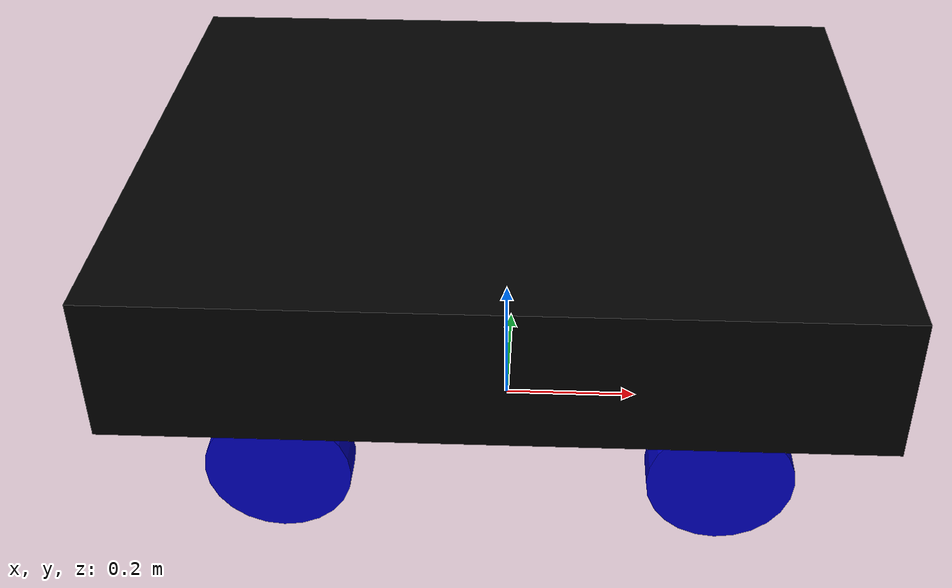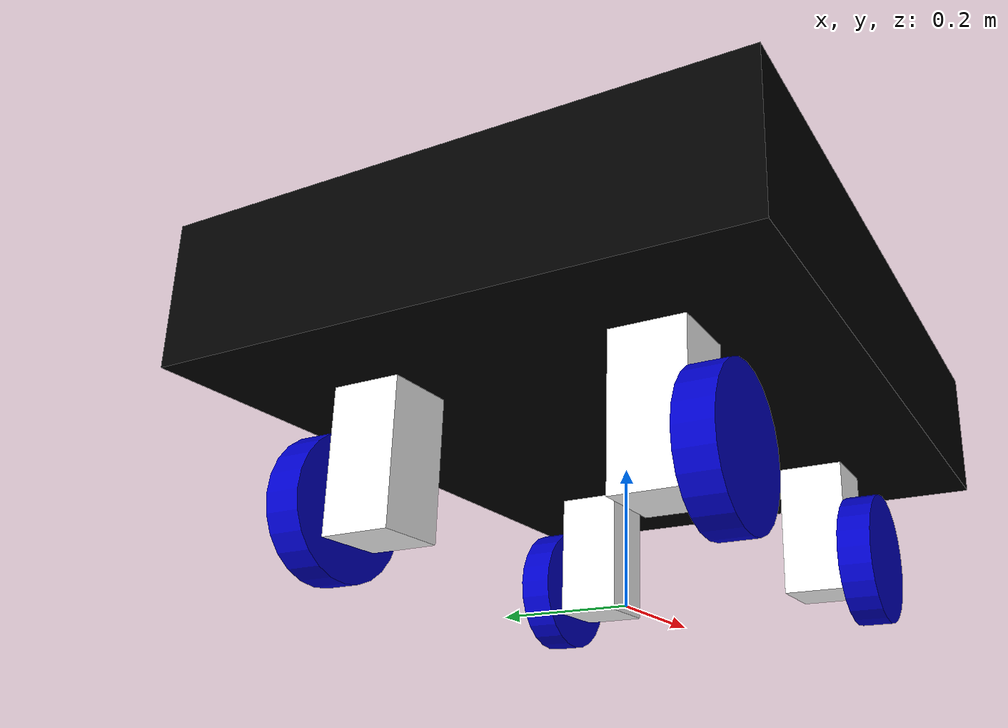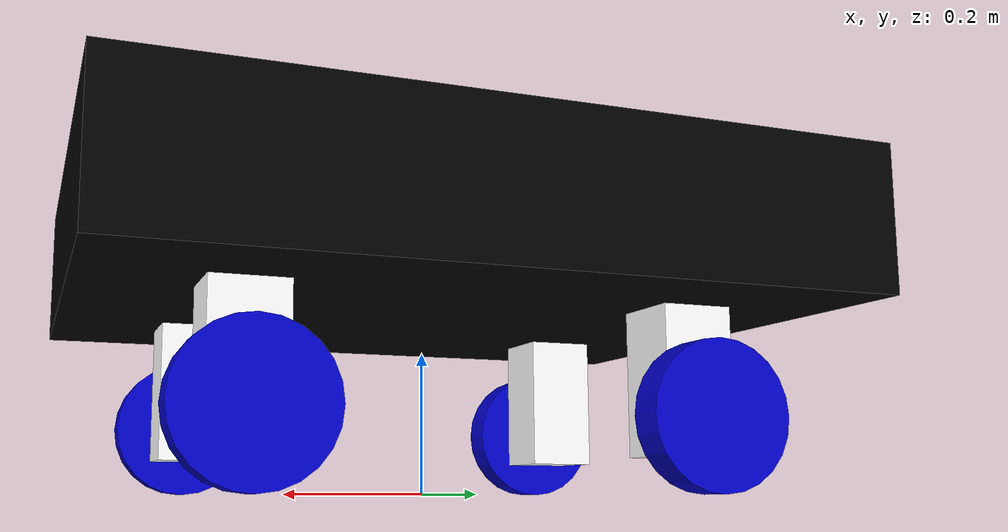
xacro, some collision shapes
<?xml version="1.0"?>
<robot xmlns:xacro="http://www.ros.org/wiki/xacro" name="test_car">
    <!-- Global properties-->
    <xacro:property name="suspension_width_x" value="0.1"/>
    <xacro:property name="suspension_width_y" value="0.1"/>
    <!-- wheel generation for wheel link, suspspension link and joint -->
    <!-- reflect1 for left or right(y)-->
    <xacro:macro name="wheel_gen" params="suffix radius width reflect1">
        <link name="wheel_${suffix}_suspension">
            <visual>
                <geometry>
                    <box size="${suspension_width_x} ${suspension_width_y} ${2*radius}"/>
                </geometry>
                <material name="white">
                    <color rgba="1 1 1 1"/>
                </material>
                <origin xyz="0.0 0.0 ${-radius}" rpy="0.0 0.0 0.0"/>
            </visual>
            <collision>
                <geometry>
                    <box size="${suspension_width_x} ${suspension_width_y} ${2*radius}"/>
                </geometry>
            </collision>
            <inertial>
                <mass value="0.1"/>
                <inertia ixx="0.00041666666666666675" ixy="0.0" ixz="0.0" iyy="0.00041666666666666675" iyz="0.0" izz="0.0001666666666666667"/>
            </inertial>
        </link>
        <joint name="wheel_joint_${suffix}" type="continuous">
            <origin xyz="0.0 ${reflect1*0.05} ${-1.5*radius}" rpy="${pi / 2} 0.0 0.0"/>
            <parent link="wheel_${suffix}_suspension"/>
            <child link="wheel_${suffix}"/>
            <axis xyz="0.0 0.0 1"/>
        </joint>
        <link name="wheel_${suffix}">
            <visual>
                <geometry>
                    <cylinder radius="${radius}" length="${width}"/>
                </geometry>
                <origin xyz="0.0 0 ${-0.5*reflect1*width} " rpy="0.0 0.0 0.0"/>
                <material name="blue">
                    <color rgba="0 0 0.8 1"/>
                </material>
            </visual>
            <collision>
                <geometry>
                    <cylinder radius="${radius}" length="${width}"/>
                </geometry>
            </collision>
            <inertial>
                <mass value="1"/>
                <inertia ixx="0.002708333333333334" ixy="0.0" ixz="0.0" iyy="0.002708333333333334" iyz="0.0" izz="0.005000000000000001"/>
            </inertial>
        </link>
    </xacro:macro>

    <!-- Wheel steer joint Generation-->
    <xacro:macro name="steer_gen" params="suffix x y z">
        <joint name="wheel_${suffix}_steer" type="continuous">
            <origin xyz="${x} ${y} ${z}" rpy="0.0 0.0 0.0"/>
            <parent link="car_body"/>
            <child link="wheel_${suffix}_suspension"/>
            <axis xyz="0.0 0.0 1"/>
            <limit effort="30" velocity="1.0"/>

        </joint>
    </xacro:macro>

    <!-- Model's parameters-->
    <xacro:property name="car_length" value="1"/>
    <xacro:property name="car_width" value="0.8"/>
    <xacro:property name="car_height" value="0.2"/>
    <xacro:property name="wheel_radius" value="0.1"/>
    <xacro:property name="wheel_width" value="0.05"/>

    <!-- Model Generation-->
    <!-- Car body generation make the wheel touch the ground-->
    <link name="base_link">
    </link>
    <joint name="car_body_joint" type="fixed">
        <origin xyz="0.0 0.0 ${car_height/2 + 2.5*wheel_radius}" rpy="0.0 0.0 0.0"/>
        <parent link="base_link"/>
        <child link="car_body"/>
    </joint>
    <link name="car_body">
        <visual>
            <geometry>
              <!--box size="${car_length} ${car_width} ${car_height}"/-->
              <mesh filename="package://vehicle_description/meshes/all.stl"/>
              <origin xyz="0.0 0.0 -0.27"/>
            </geometry>
            <material name="black">
                <color rgba="0 0 0 1"/>
            </material>
            <origin xyz="0.0 0.0 0.0" rpy="0.0 0.0 0.0"/>
        </visual>
        <collision>
            <geometry>
                <box size="${car_length} ${car_width} ${car_height}"/>
            </geometry>
        </collision>
        <inertial>
            <mass value="10"/>
           <inertia ixx="0.56666" ixy="0.0" ixz="0.0" iyy="0.86666666" iyz="0.0" izz="1.3666666"/>
        </inertial>
    </link>

    <xacro:steer_gen suffix="1" x="0.3" y="0.2" z="-0.1"/>
    <xacro:wheel_gen suffix="1" radius="${wheel_radius}" width="${wheel_width}" reflect1="1" />
    <xacro:steer_gen suffix="2" x="-0.3" y="0.2" z="-0.1"/>
    <xacro:wheel_gen suffix="2" radius="${wheel_radius}" width="${wheel_width}" reflect1="1" />
    <xacro:steer_gen suffix="3" x="0.3" y="-0.2" z="-0.1"/>
    <xacro:wheel_gen suffix="3" radius="${wheel_radius}" width="${wheel_width}" reflect1="-1" />
    <xacro:steer_gen suffix="4" x="-0.3" y="-0.2" z="-0.1"/>
    <xacro:wheel_gen suffix="4" radius="${wheel_radius}" width="${wheel_width}" reflect1="-1" />
    <!-- Transmission Macro-->
    <xacro:macro name="steer_trans" params="suffix">
        <transmission name="steering">
            <type>transmission_interface/SimpleTransmission</type>
            <actuator name="$steering_motor">
                <mechanicalReduction>1</mechanicalReduction>
            </actuator>
            <joint name="wheel_${suffix}_steer">
                <hardwareInterface>hardware_interface/PositionJointInterface</hardwareInterface>
            </joint>
        </transmission>
    </xacro:macro>
    <xacro:macro name="wheel_trans" params="suffix">
        <transmission name="wheel_trans">
            <type>transmission_interface/SimpleTransmission</type>
            <actuator name="$wheel_motor">
                <mechanicalReduction>1</mechanicalReduction>
            </actuator>
            <joint name="wheel_joint_${suffix}">
                <hardwareInterface>hardware_interface/EffortJointInterface</hardwareInterface>
            </joint>
        </transmission>
    </xacro:macro>
    <xacro:steer_trans suffix="1"/>
    <xacro:steer_trans suffix="2"/>
    <xacro:steer_trans suffix="3"/>
    <xacro:steer_trans suffix="4"/>
    <xacro:wheel_trans suffix="1"/>
    <xacro:wheel_trans suffix="2"/>
    <xacro:wheel_trans suffix="3"/>
    <xacro:wheel_trans suffix="4"/>

</robot>
